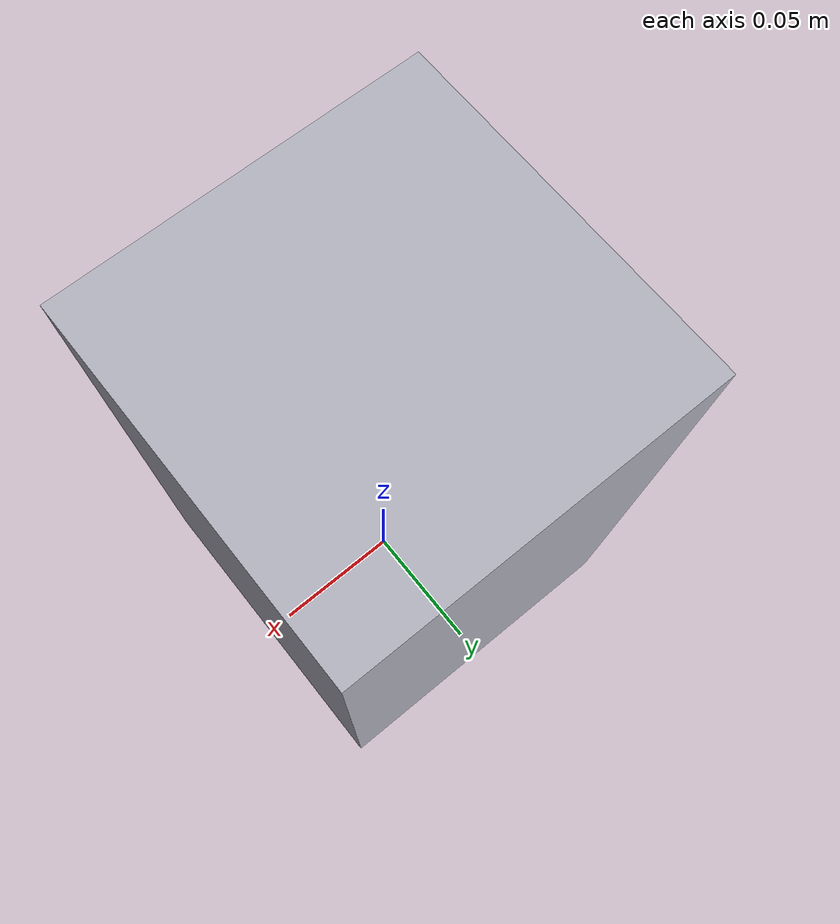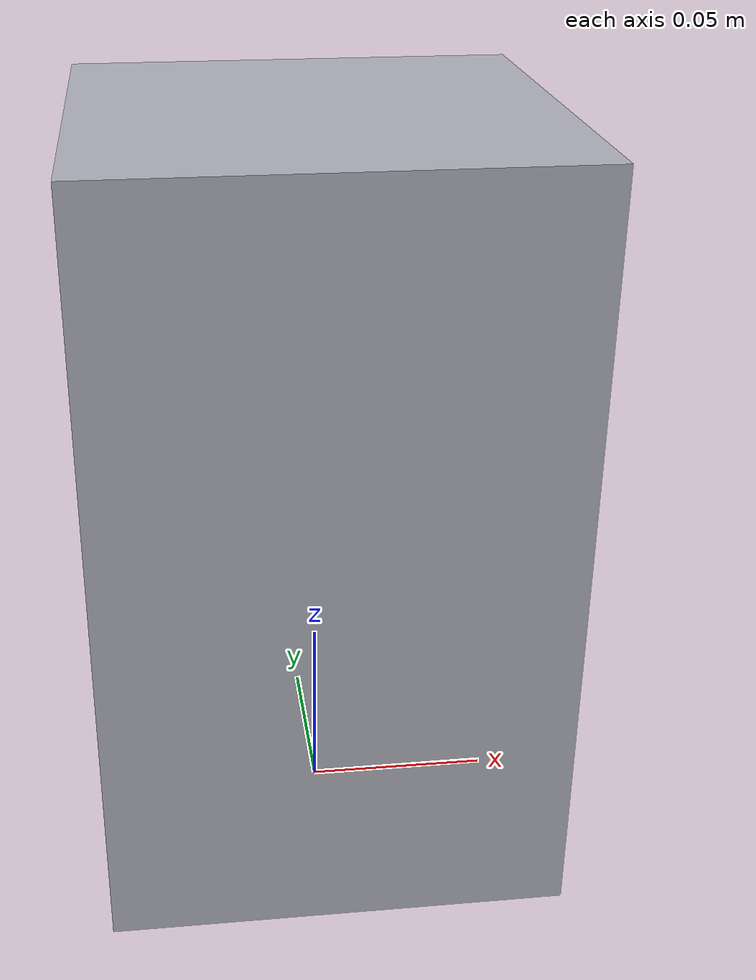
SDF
<?xml version="1.0"?>
<sdf version="1.6">
  <model name="collect_rig_1">
    <static>false</static>
    <link name="link">
      <gravity>false</gravity>
      <inertial><mass>0.5</mass>
        <inertia><ixx>0.01</ixx><ixy>0</ixy><ixz>0</ixz>
                 <iyy>0.01</iyy><iyz>0</iyz><izz>0.01</izz></inertia></inertial>
      <visual name="cam_body">
        <pose>0 0 0.10 0 0 0</pose>
        <geometry><box><size>0.12 0.12 0.20</size></box></geometry>
        <material><ambient>0.6 0.6 0.65 1</ambient><diffuse>0.7 0.7 0.75 1</diffuse>
        </material>
      </visual>
      <sensor name="camera" type="camera">
        <always_on>true</always_on>
        <update_rate>15</update_rate>
        <visualize>false</visualize>
        <camera>
          <horizontal_fov>1.012291</horizontal_fov>
          <image><width>1280</width><height>960</height><format>R8G8B8</format></image>
          <clip><near>0.05</near><far>20</far></clip>
        </camera>
        <plugin name="camera_plugin" filename="libgazebo_ros_camera.so">
          <robotNamespace>/rig1</robotNamespace>
          <cameraName>camera</cameraName>
          <frameName>camera_link</frameName>
          <imageTopicName>rgb/image_raw</imageTopicName>
          <cameraInfoTopicName>rgb/camera_info</cameraInfoTopicName>
        </plugin>
      </sensor>
    </link>
  </model>
</sdf>
